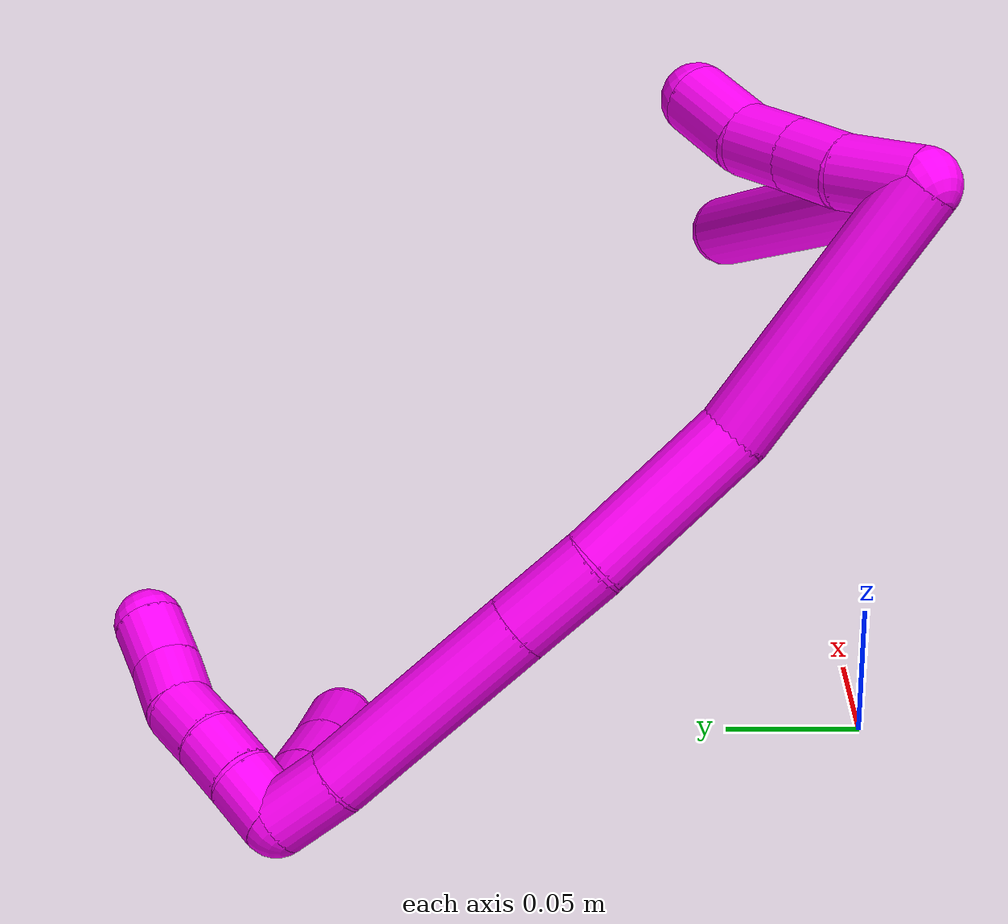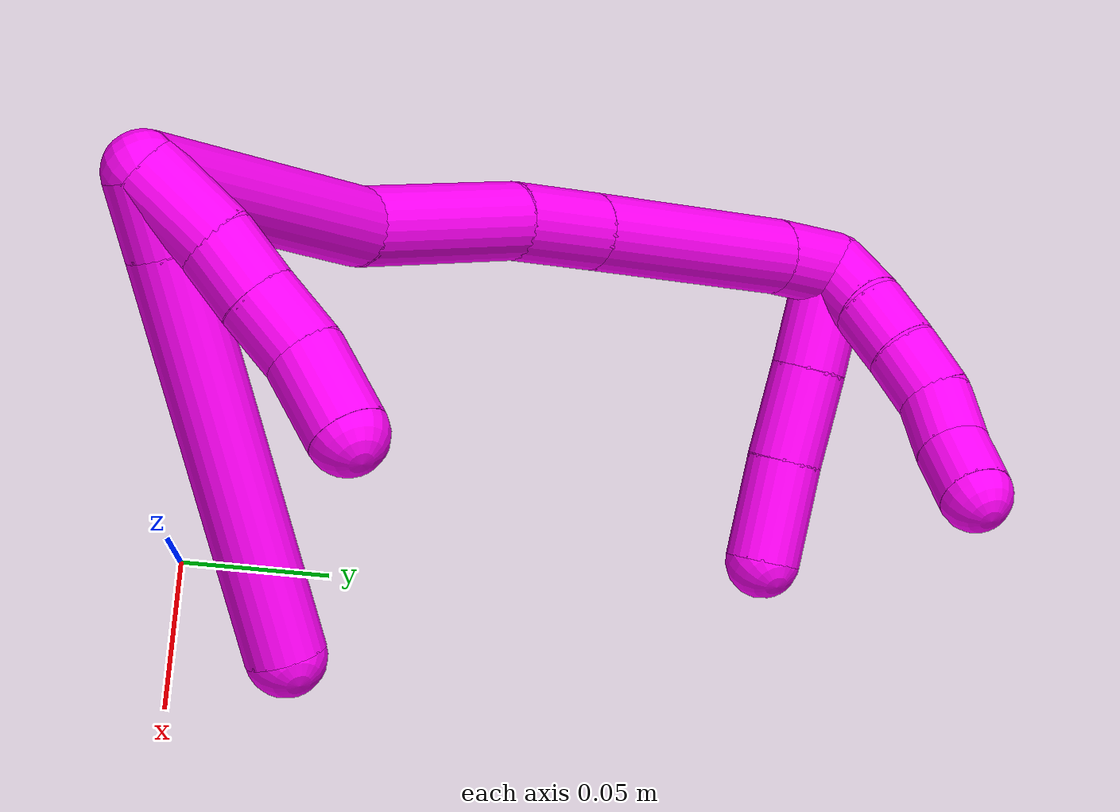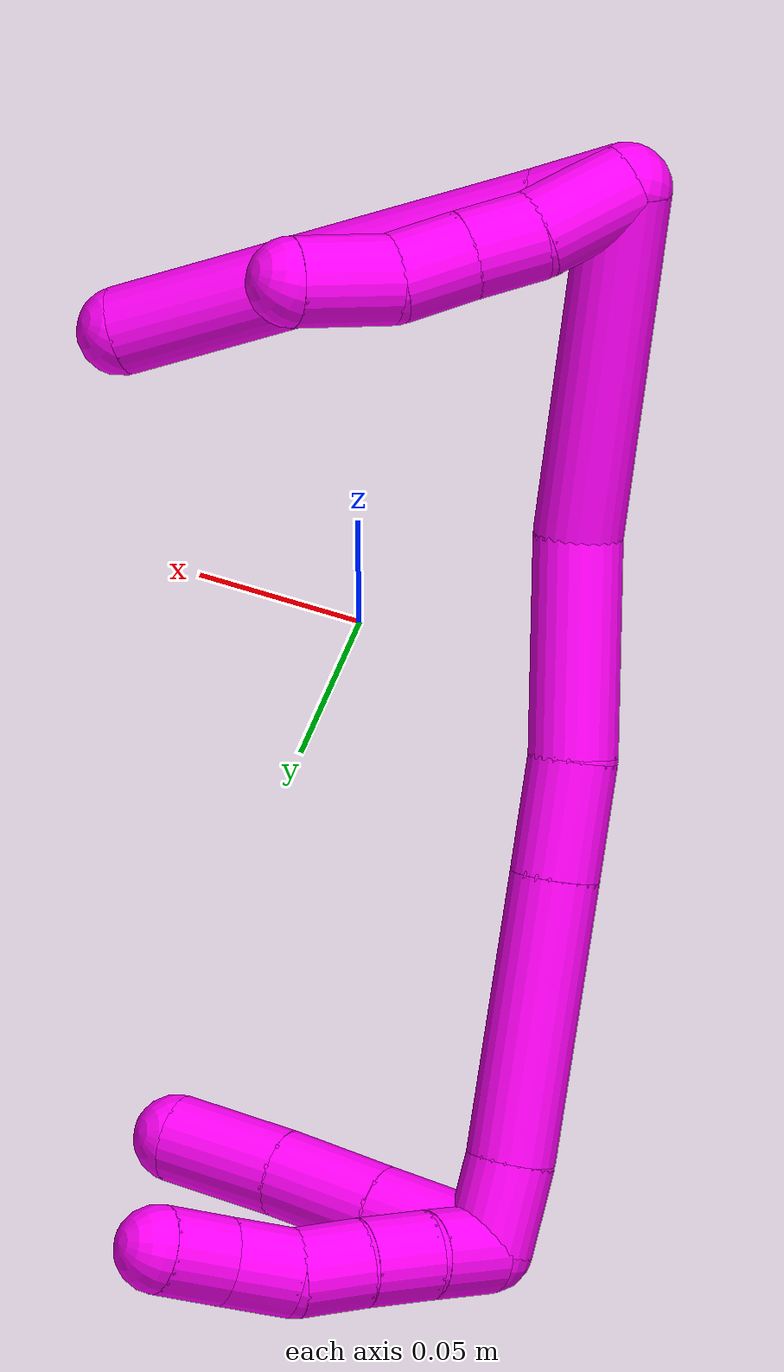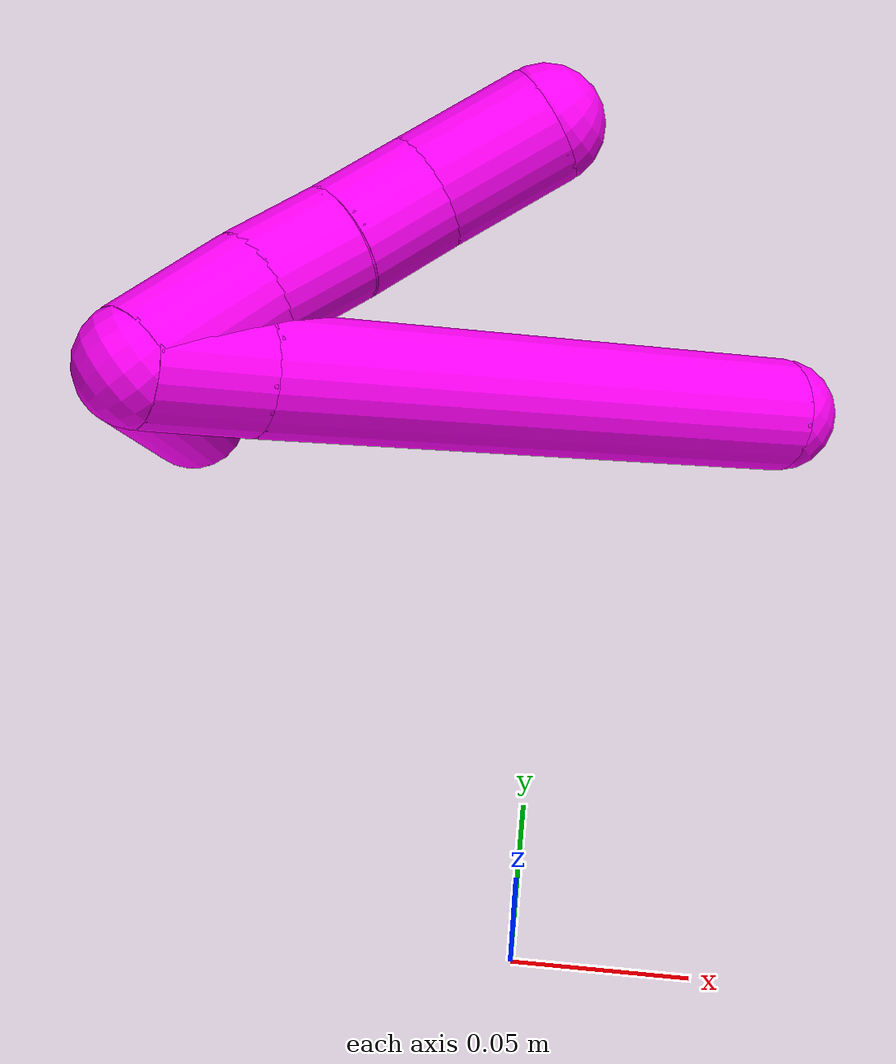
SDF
<sdf version="1.7">
 <world name="default">
  <model name="10">
   <static>0</static>
   <link name="10">
    <collision name="collision-cylinder-e_1_2_8">
     <pose>0.009239 0.003254 0.007094 -0.430088 0.869361 -0.202134</pose>
     <geometry><cylinder><radius>0.0125</radius><length>0.024189</length></cylinder></geometry>
     <surface>
      <friction><ode><mu>1.16</mu><mu2>1.16</mu2><slip1>0</slip1><slip2>0</slip2></ode></friction>
      <contact><ode><kp>1e+06</kp><kd>1</kd><max_vel>0</max_vel><min_depth>0.001</min_depth></ode></contact>
     </surface>
    </collision>
    <visual name="visual-cylinder-e_1_2_8">
     <pose>0.009239 0.003254 0.007094 -0.430088 0.869361 -0.202134</pose>
     <geometry><cylinder><radius>0.0125</radius><length>0.024189</length></cylinder></geometry>
     <material><ambient>1 0 0.964706 1</ambient></material>
    </visual>
    <collision name="collision-cylinder-e_2_8_6">
     <pose>0.065962 0.02285 0.052073 -0.407226 0.855421 -0.187691</pose>
     <geometry><cylinder><radius>0.0125</radius><length>0.125811</length></cylinder></geometry>
     <surface>
      <friction><ode><mu>1.16</mu><mu2>1.16</mu2><slip1>0</slip1><slip2>0</slip2></ode></friction>
      <contact><ode><kp>1e+06</kp><kd>1</kd><max_vel>0</max_vel><min_depth>0.001</min_depth></ode></contact>
     </surface>
    </collision>
    <visual name="visual-cylinder-e_2_8_6">
     <pose>0.065962 0.02285 0.052073 -0.407226 0.855421 -0.187691</pose>
     <geometry><cylinder><radius>0.0125</radius><length>0.125811</length></cylinder></geometry>
     <material><ambient>1 0 0.964706 1</ambient></material>
    </visual>
    <collision name="collision-cylinder-e_1_2_9">
     <pose>0.003941 0.00823 0.0115 -0.62113 0.271787 -0.087715</pose>
     <geometry><cylinder><radius>0.0125</radius><length>0.029361</length></cylinder></geometry>
     <surface>
      <friction><ode><mu>1.16</mu><mu2>1.16</mu2><slip1>0</slip1><slip2>0</slip2></ode></friction>
      <contact><ode><kp>1e+06</kp><kd>1</kd><max_vel>0</max_vel><min_depth>0.001</min_depth></ode></contact>
     </surface>
    </collision>
    <visual name="visual-cylinder-e_1_2_9">
     <pose>0.003941 0.00823 0.0115 -0.62113 0.271787 -0.087715</pose>
     <geometry><cylinder><radius>0.0125</radius><length>0.029361</length></cylinder></geometry>
     <material><ambient>1 0 0.964706 1</ambient></material>
    </visual>
    <collision name="collision-cylinder-e_2_9_10">
     <pose>0.010925 0.020532 0.031959 -0.426633 0.299858 -0.06542</pose>
     <geometry><cylinder><radius>0.0125</radius><length>0.0206</length></cylinder></geometry>
     <surface>
      <friction><ode><mu>1.16</mu><mu2>1.16</mu2><slip1>0</slip1><slip2>0</slip2></ode></friction>
      <contact><ode><kp>1e+06</kp><kd>1</kd><max_vel>0</max_vel><min_depth>0.001</min_depth></ode></contact>
     </surface>
    </collision>
    <visual name="visual-cylinder-e_2_9_10">
     <pose>0.010925 0.020532 0.031959 -0.426633 0.299858 -0.06542</pose>
     <geometry><cylinder><radius>0.0125</radius><length>0.0206</length></cylinder></geometry>
     <material><ambient>1 0 0.964706 1</ambient></material>
    </visual>
    <collision name="collision-cylinder-e_3_10_11">
     <pose>0.016873 0.029237 0.050219 -0.462108 0.272638 -0.064518</pose>
     <geometry><cylinder><radius>0.0125</radius><length>0.02158</length></cylinder></geometry>
     <surface>
      <friction><ode><mu>1.16</mu><mu2>1.16</mu2><slip1>0</slip1><slip2>0</slip2></ode></friction>
      <contact><ode><kp>1e+06</kp><kd>1</kd><max_vel>0</max_vel><min_depth>0.001</min_depth></ode></contact>
     </surface>
    </collision>
    <visual name="visual-cylinder-e_3_10_11">
     <pose>0.016873 0.029237 0.050219 -0.462108 0.272638 -0.064518</pose>
     <geometry><cylinder><radius>0.0125</radius><length>0.02158</length></cylinder></geometry>
     <material><ambient>1 0 0.964706 1</ambient></material>
    </visual>
    <collision name="collision-cylinder-e_4_11_5">
     <pose>0.022722 0.036349 0.07322 -0.179084 0.208372 -0.018775</pose>
     <geometry><cylinder><radius>0.0125</radius><length>0.028458</length></cylinder></geometry>
     <surface>
      <friction><ode><mu>1.16</mu><mu2>1.16</mu2><slip1>0</slip1><slip2>0</slip2></ode></friction>
      <contact><ode><kp>1e+06</kp><kd>1</kd><max_vel>0</max_vel><min_depth>0.001</min_depth></ode></contact>
     </surface>
    </collision>
    <visual name="visual-cylinder-e_4_11_5">
     <pose>0.022722 0.036349 0.07322 -0.179084 0.208372 -0.018775</pose>
     <geometry><cylinder><radius>0.0125</radius><length>0.028458</length></cylinder></geometry>
     <material><ambient>1 0 0.964706 1</ambient></material>
    </visual>
    <collision name="collision-cylinder-e_1_2_12">
     <pose>0.023014 0.04327 -0.010641 -1.81194 0.476752 -0.601208</pose>
     <geometry><cylinder><radius>0.0125</radius><length>0.100303</length></cylinder></geometry>
     <surface>
      <friction><ode><mu>1.16</mu><mu2>1.16</mu2><slip1>0</slip1><slip2>0</slip2></ode></friction>
      <contact><ode><kp>1e+06</kp><kd>1</kd><max_vel>0</max_vel><min_depth>0.001</min_depth></ode></contact>
     </surface>
    </collision>
    <visual name="visual-cylinder-e_1_2_12">
     <pose>0.023014 0.04327 -0.010641 -1.81194 0.476752 -0.601208</pose>
     <geometry><cylinder><radius>0.0125</radius><length>0.100303</length></cylinder></geometry>
     <material><ambient>1 0 0.964706 1</ambient></material>
    </visual>
    <collision name="collision-cylinder-e_2_12_13">
     <pose>0.051797 0.11613 -0.026787 -1.75469 0.189368 -0.227534</pose>
     <geometry><cylinder><radius>0.0125</radius><length>0.061291</length></cylinder></geometry>
     <surface>
      <friction><ode><mu>1.16</mu><mu2>1.16</mu2><slip1>0</slip1><slip2>0</slip2></ode></friction>
      <contact><ode><kp>1e+06</kp><kd>1</kd><max_vel>0</max_vel><min_depth>0.001</min_depth></ode></contact>
     </surface>
    </collision>
    <visual name="visual-cylinder-e_2_12_13">
     <pose>0.051797 0.11613 -0.026787 -1.75469 0.189368 -0.227534</pose>
     <geometry><cylinder><radius>0.0125</radius><length>0.061291</length></cylinder></geometry>
     <material><ambient>1 0 0.964706 1</ambient></material>
    </visual>
    <collision name="collision-cylinder-e_3_13_14">
     <pose>0.06208 0.161603 -0.033625 -1.65465 0.275976 -0.299799</pose>
     <geometry><cylinder><radius>0.0125</radius><length>0.033132</length></cylinder></geometry>
     <surface>
      <friction><ode><mu>1.16</mu><mu2>1.16</mu2><slip1>0</slip1><slip2>0</slip2></ode></friction>
      <contact><ode><kp>1e+06</kp><kd>1</kd><max_vel>0</max_vel><min_depth>0.001</min_depth></ode></contact>
     </surface>
    </collision>
    <visual name="visual-cylinder-e_3_13_14">
     <pose>0.06208 0.161603 -0.033625 -1.65465 0.275976 -0.299799</pose>
     <geometry><cylinder><radius>0.0125</radius><length>0.033132</length></cylinder></geometry>
     <material><ambient>1 0 0.964706 1</ambient></material>
    </visual>
    <collision name="collision-cylinder-e_4_14_15">
     <pose>0.077706 0.215669 -0.038174 -1.65477 0.282245 -0.306627</pose>
     <geometry><cylinder><radius>0.0125</radius><length>0.079794</length></cylinder></geometry>
     <surface>
      <friction><ode><mu>1.16</mu><mu2>1.16</mu2><slip1>0</slip1><slip2>0</slip2></ode></friction>
      <contact><ode><kp>1e+06</kp><kd>1</kd><max_vel>0</max_vel><min_depth>0.001</min_depth></ode></contact>
     </surface>
    </collision>
    <visual name="visual-cylinder-e_4_14_15">
     <pose>0.077706 0.215669 -0.038174 -1.65477 0.282245 -0.306627</pose>
     <geometry><cylinder><radius>0.0125</radius><length>0.079794</length></cylinder></geometry>
     <material><ambient>1 0 0.964706 1</ambient></material>
    </visual>
    <collision name="collision-cylinder-e_5_15_1">
     <pose>0.092388 0.266078 -0.041057 -1.54373 0.284029 -0.276542</pose>
     <geometry><cylinder><radius>0.0125</radius><length>0.02548</length></cylinder></geometry>
     <surface>
      <friction><ode><mu>1.16</mu><mu2>1.16</mu2><slip1>0</slip1><slip2>0</slip2></ode></friction>
      <contact><ode><kp>1e+06</kp><kd>1</kd><max_vel>0</max_vel><min_depth>0.001</min_depth></ode></contact>
     </surface>
    </collision>
    <visual name="visual-cylinder-e_5_15_1">
     <pose>0.092388 0.266078 -0.041057 -1.54373 0.284029 -0.276542</pose>
     <geometry><cylinder><radius>0.0125</radius><length>0.02548</length></cylinder></geometry>
     <material><ambient>1 0 0.964706 1</ambient></material>
    </visual>
    <collision name="collision-cylinder-e_1_1_16">
     <pose>0.108875 0.273359 -0.03056 0.45264 0.851885 0.208196</pose>
     <geometry><cylinder><radius>0.0125</radius><length>0.034331</length></cylinder></geometry>
     <surface>
      <friction><ode><mu>1.16</mu><mu2>1.16</mu2><slip1>0</slip1><slip2>0</slip2></ode></friction>
      <contact><ode><kp>1e+06</kp><kd>1</kd><max_vel>0</max_vel><min_depth>0.001</min_depth></ode></contact>
     </surface>
    </collision>
    <visual name="visual-cylinder-e_1_1_16">
     <pose>0.108875 0.273359 -0.03056 0.45264 0.851885 0.208196</pose>
     <geometry><cylinder><radius>0.0125</radius><length>0.034331</length></cylinder></geometry>
     <material><ambient>1 0 0.964706 1</ambient></material>
    </visual>
    <collision name="collision-cylinder-e_2_16_17">
     <pose>0.133838 0.263694 -0.011366 0.481861 0.868753 0.226998</pose>
     <geometry><cylinder><radius>0.0125</radius><length>0.03155</length></cylinder></geometry>
     <surface>
      <friction><ode><mu>1.16</mu><mu2>1.16</mu2><slip1>0</slip1><slip2>0</slip2></ode></friction>
      <contact><ode><kp>1e+06</kp><kd>1</kd><max_vel>0</max_vel><min_depth>0.001</min_depth></ode></contact>
     </surface>
    </collision>
    <visual name="visual-cylinder-e_2_16_17">
     <pose>0.133838 0.263694 -0.011366 0.481861 0.868753 0.226998</pose>
     <geometry><cylinder><radius>0.0125</radius><length>0.03155</length></cylinder></geometry>
     <material><ambient>1 0 0.964706 1</ambient></material>
    </visual>
    <collision name="collision-cylinder-e_3_17_4">
     <pose>0.15883 0.254467 0.007814 0.417697 0.861714 0.194226</pose>
     <geometry><cylinder><radius>0.0125</radius><length>0.034118</length></cylinder></geometry>
     <surface>
      <friction><ode><mu>1.16</mu><mu2>1.16</mu2><slip1>0</slip1><slip2>0</slip2></ode></friction>
      <contact><ode><kp>1e+06</kp><kd>1</kd><max_vel>0</max_vel><min_depth>0.001</min_depth></ode></contact>
     </surface>
    </collision>
    <visual name="visual-cylinder-e_3_17_4">
     <pose>0.15883 0.254467 0.007814 0.417697 0.861714 0.194226</pose>
     <geometry><cylinder><radius>0.0125</radius><length>0.034118</length></cylinder></geometry>
     <material><ambient>1 0 0.964706 1</ambient></material>
    </visual>
    <collision name="collision-cylinder-e_1_1_18">
     <pose>0.095687 0.280536 -0.030982 -0.225268 -0.02707 0.003062</pose>
     <geometry><cylinder><radius>0.0125</radius><length>0.02</length></cylinder></geometry>
     <surface>
      <friction><ode><mu>1.16</mu><mu2>1.16</mu2><slip1>0</slip1><slip2>0</slip2></ode></friction>
      <contact><ode><kp>1e+06</kp><kd>1</kd><max_vel>0</max_vel><min_depth>0.001</min_depth></ode></contact>
     </surface>
    </collision>
    <visual name="visual-cylinder-e_1_1_18">
     <pose>0.095687 0.280536 -0.030982 -0.225268 -0.02707 0.003062</pose>
     <geometry><cylinder><radius>0.0125</radius><length>0.02</length></cylinder></geometry>
     <material><ambient>1 0 0.964706 1</ambient></material>
    </visual>
    <collision name="collision-cylinder-e_2_18_19">
     <pose>0.096642 0.285087 -0.011588 -0.235774 0.122841 -0.014567</pose>
     <geometry><cylinder><radius>0.0125</radius><length>0.02</length></cylinder></geometry>
     <surface>
      <friction><ode><mu>1.16</mu><mu2>1.16</mu2><slip1>0</slip1><slip2>0</slip2></ode></friction>
      <contact><ode><kp>1e+06</kp><kd>1</kd><max_vel>0</max_vel><min_depth>0.001</min_depth></ode></contact>
     </surface>
    </collision>
    <visual name="visual-cylinder-e_2_18_19">
     <pose>0.096642 0.285087 -0.011588 -0.235774 0.122841 -0.014567</pose>
     <geometry><cylinder><radius>0.0125</radius><length>0.02</length></cylinder></geometry>
     <material><ambient>1 0 0.964706 1</ambient></material>
    </visual>
    <collision name="collision-cylinder-e_3_19_20">
     <pose>0.100018 0.289978 0.007483 -0.266588 0.216796 -0.029182</pose>
     <geometry><cylinder><radius>0.0125</radius><length>0.02</length></cylinder></geometry>
     <surface>
      <friction><ode><mu>1.16</mu><mu2>1.16</mu2><slip1>0</slip1><slip2>0</slip2></ode></friction>
      <contact><ode><kp>1e+06</kp><kd>1</kd><max_vel>0</max_vel><min_depth>0.001</min_depth></ode></contact>
     </surface>
    </collision>
    <visual name="visual-cylinder-e_3_19_20">
     <pose>0.100018 0.289978 0.007483 -0.266588 0.216796 -0.029182</pose>
     <geometry><cylinder><radius>0.0125</radius><length>0.02</length></cylinder></geometry>
     <material><ambient>1 0 0.964706 1</ambient></material>
    </visual>
    <collision name="collision-cylinder-e_4_20_21">
     <pose>0.104396 0.292048 0.02664 0.051659 0.224538 0.005825</pose>
     <geometry><cylinder><radius>0.0125</radius><length>0.02</length></cylinder></geometry>
     <surface>
      <friction><ode><mu>1.16</mu><mu2>1.16</mu2><slip1>0</slip1><slip2>0</slip2></ode></friction>
      <contact><ode><kp>1e+06</kp><kd>1</kd><max_vel>0</max_vel><min_depth>0.001</min_depth></ode></contact>
     </surface>
    </collision>
    <visual name="visual-cylinder-e_4_20_21">
     <pose>0.104396 0.292048 0.02664 0.051659 0.224538 0.005825</pose>
     <geometry><cylinder><radius>0.0125</radius><length>0.02</length></cylinder></geometry>
     <material><ambient>1 0 0.964706 1</ambient></material>
    </visual>
    <collision name="collision-cylinder-e_5_21_3">
     <pose>0.107257 0.291209 0.04635 0.033576 0.063532 0.001067</pose>
     <geometry><cylinder><radius>0.0125</radius><length>0.02</length></cylinder></geometry>
     <surface>
      <friction><ode><mu>1.16</mu><mu2>1.16</mu2><slip1>0</slip1><slip2>0</slip2></ode></friction>
      <contact><ode><kp>1e+06</kp><kd>1</kd><max_vel>0</max_vel><min_depth>0.001</min_depth></ode></contact>
     </surface>
    </collision>
    <visual name="visual-cylinder-e_5_21_3">
     <pose>0.107257 0.291209 0.04635 0.033576 0.063532 0.001067</pose>
     <geometry><cylinder><radius>0.0125</radius><length>0.02</length></cylinder></geometry>
     <material><ambient>1 0 0.964706 1</ambient></material>
    </visual>
    <collision name="collision-sphere-3">
     <pose>0.107892 0.290874 0.056324 0 -0 0</pose>
     <geometry><sphere><radius>0.0125</radius></sphere></geometry>
     <surface>
      <friction><ode><mu>1.16</mu><mu2>1.16</mu2><slip1>0</slip1><slip2>0</slip2></ode></friction>
      <contact><ode><kp>1e+06</kp><kd>1</kd><max_vel>0</max_vel><min_depth>0.001</min_depth></ode></contact>
     </surface>
    </collision>
    <visual name="visual-sphere-3">
     <pose>0.107892 0.290874 0.056324 0 -0 0</pose>
     <geometry><sphere><radius>0.0125</radius></sphere></geometry>
     <material><ambient>1 0 0.964706 1</ambient></material>
    </visual>
    <collision name="collision-sphere-21">
     <pose>0.106622 0.291544 0.036376 0 -0 0</pose>
     <geometry><sphere><radius>0.0125</radius></sphere></geometry>
     <surface>
      <friction><ode><mu>1.16</mu><mu2>1.16</mu2><slip1>0</slip1><slip2>0</slip2></ode></friction>
      <contact><ode><kp>1e+06</kp><kd>1</kd><max_vel>0</max_vel><min_depth>0.001</min_depth></ode></contact>
     </surface>
    </collision>
    <visual name="visual-sphere-21">
     <pose>0.106622 0.291544 0.036376 0 -0 0</pose>
     <geometry><sphere><radius>0.0125</radius></sphere></geometry>
     <material><ambient>1 0 0.964706 1</ambient></material>
    </visual>
    <collision name="collision-sphere-20">
     <pose>0.102169 0.292551 0.016904 0 -0 0</pose>
     <geometry><sphere><radius>0.0125</radius></sphere></geometry>
     <surface>
      <friction><ode><mu>1.16</mu><mu2>1.16</mu2><slip1>0</slip1><slip2>0</slip2></ode></friction>
      <contact><ode><kp>1e+06</kp><kd>1</kd><max_vel>0</max_vel><min_depth>0.001</min_depth></ode></contact>
     </surface>
    </collision>
    <visual name="visual-sphere-20">
     <pose>0.102169 0.292551 0.016904 0 -0 0</pose>
     <geometry><sphere><radius>0.0125</radius></sphere></geometry>
     <material><ambient>1 0 0.964706 1</ambient></material>
    </visual>
    <collision name="collision-sphere-19">
     <pose>0.097867 0.287405 -0.001938 0 -0 0</pose>
     <geometry><sphere><radius>0.0125</radius></sphere></geometry>
     <surface>
      <friction><ode><mu>1.16</mu><mu2>1.16</mu2><slip1>0</slip1><slip2>0</slip2></ode></friction>
      <contact><ode><kp>1e+06</kp><kd>1</kd><max_vel>0</max_vel><min_depth>0.001</min_depth></ode></contact>
     </surface>
    </collision>
    <visual name="visual-sphere-19">
     <pose>0.097867 0.287405 -0.001938 0 -0 0</pose>
     <geometry><sphere><radius>0.0125</radius></sphere></geometry>
     <material><ambient>1 0 0.964706 1</ambient></material>
    </visual>
    <collision name="collision-sphere-11">
     <pose>0.019778 0.03387 0.059521 0 -0 0</pose>
     <geometry><sphere><radius>0.0125</radius></sphere></geometry>
     <surface>
      <friction><ode><mu>1.16</mu><mu2>1.16</mu2><slip1>0</slip1><slip2>0</slip2></ode></friction>
      <contact><ode><kp>1e+06</kp><kd>1</kd><max_vel>0</max_vel><min_depth>0.001</min_depth></ode></contact>
     </surface>
    </collision>
    <visual name="visual-sphere-11">
     <pose>0.019778 0.03387 0.059521 0 -0 0</pose>
     <geometry><sphere><radius>0.0125</radius></sphere></geometry>
     <material><ambient>1 0 0.964706 1</ambient></material>
    </visual>
    <collision name="collision-sphere-10">
     <pose>0.013967 0.024604 0.040918 0 -0 0</pose>
     <geometry><sphere><radius>0.0125</radius></sphere></geometry>
     <surface>
      <friction><ode><mu>1.16</mu><mu2>1.16</mu2><slip1>0</slip1><slip2>0</slip2></ode></friction>
      <contact><ode><kp>1e+06</kp><kd>1</kd><max_vel>0</max_vel><min_depth>0.001</min_depth></ode></contact>
     </surface>
    </collision>
    <visual name="visual-sphere-10">
     <pose>0.013967 0.024604 0.040918 0 -0 0</pose>
     <geometry><sphere><radius>0.0125</radius></sphere></geometry>
     <material><ambient>1 0 0.964706 1</ambient></material>
    </visual>
    <collision name="collision-sphere-6">
     <pose>0.113446 0.039191 0.089959 0 -0 0</pose>
     <geometry><sphere><radius>0.0125</radius></sphere></geometry>
     <surface>
      <friction><ode><mu>1.16</mu><mu2>1.16</mu2><slip1>0</slip1><slip2>0</slip2></ode></friction>
      <contact><ode><kp>1e+06</kp><kd>1</kd><max_vel>0</max_vel><min_depth>0.001</min_depth></ode></contact>
     </surface>
    </collision>
    <visual name="visual-sphere-6">
     <pose>0.113446 0.039191 0.089959 0 -0 0</pose>
     <geometry><sphere><radius>0.0125</radius></sphere></geometry>
     <material><ambient>1 0 0.964706 1</ambient></material>
    </visual>
    <collision name="collision-sphere-9">
     <pose>0.007882 0.01646 0.023001 0 -0 0</pose>
     <geometry><sphere><radius>0.0125</radius></sphere></geometry>
     <surface>
      <friction><ode><mu>1.16</mu><mu2>1.16</mu2><slip1>0</slip1><slip2>0</slip2></ode></friction>
      <contact><ode><kp>1e+06</kp><kd>1</kd><max_vel>0</max_vel><min_depth>0.001</min_depth></ode></contact>
     </surface>
    </collision>
    <visual name="visual-sphere-9">
     <pose>0.007882 0.01646 0.023001 0 -0 0</pose>
     <geometry><sphere><radius>0.0125</radius></sphere></geometry>
     <material><ambient>1 0 0.964706 1</ambient></material>
    </visual>
    <collision name="collision-sphere-2">
     <geometry><sphere><radius>0.0125</radius></sphere></geometry>
     <surface>
      <friction><ode><mu>1.16</mu><mu2>1.16</mu2><slip1>0</slip1><slip2>0</slip2></ode></friction>
      <contact><ode><kp>1e+06</kp><kd>1</kd><max_vel>0</max_vel><min_depth>0.001</min_depth></ode></contact>
     </surface>
    </collision>
    <visual name="visual-sphere-2">
     <geometry><sphere><radius>0.0125</radius></sphere></geometry>
     <material><ambient>1 0 0.964706 1</ambient></material>
    </visual>
    <collision name="collision-sphere-8">
     <pose>0.018478 0.006508 0.014188 0 -0 0</pose>
     <geometry><sphere><radius>0.0125</radius></sphere></geometry>
     <surface>
      <friction><ode><mu>1.16</mu><mu2>1.16</mu2><slip1>0</slip1><slip2>0</slip2></ode></friction>
      <contact><ode><kp>1e+06</kp><kd>1</kd><max_vel>0</max_vel><min_depth>0.001</min_depth></ode></contact>
     </surface>
    </collision>
    <visual name="visual-sphere-8">
     <pose>0.018478 0.006508 0.014188 0 -0 0</pose>
     <geometry><sphere><radius>0.0125</radius></sphere></geometry>
     <material><ambient>1 0 0.964706 1</ambient></material>
    </visual>
    <collision name="collision-sphere-5">
     <pose>0.025665 0.038829 0.086918 0 -0 0</pose>
     <geometry><sphere><radius>0.0125</radius></sphere></geometry>
     <surface>
      <friction><ode><mu>1.16</mu><mu2>1.16</mu2><slip1>0</slip1><slip2>0</slip2></ode></friction>
      <contact><ode><kp>1e+06</kp><kd>1</kd><max_vel>0</max_vel><min_depth>0.001</min_depth></ode></contact>
     </surface>
    </collision>
    <visual name="visual-sphere-5">
     <pose>0.025665 0.038829 0.086918 0 -0 0</pose>
     <geometry><sphere><radius>0.0125</radius></sphere></geometry>
     <material><ambient>1 0 0.964706 1</ambient></material>
    </visual>
    <collision name="collision-sphere-12">
     <pose>0.046029 0.08654 -0.021283 0 -0 0</pose>
     <geometry><sphere><radius>0.0125</radius></sphere></geometry>
     <surface>
      <friction><ode><mu>1.16</mu><mu2>1.16</mu2><slip1>0</slip1><slip2>0</slip2></ode></friction>
      <contact><ode><kp>1e+06</kp><kd>1</kd><max_vel>0</max_vel><min_depth>0.001</min_depth></ode></contact>
     </surface>
    </collision>
    <visual name="visual-sphere-12">
     <pose>0.046029 0.08654 -0.021283 0 -0 0</pose>
     <geometry><sphere><radius>0.0125</radius></sphere></geometry>
     <material><ambient>1 0 0.964706 1</ambient></material>
    </visual>
    <collision name="collision-sphere-13">
     <pose>0.057566 0.14572 -0.03229 0 -0 0</pose>
     <geometry><sphere><radius>0.0125</radius></sphere></geometry>
     <surface>
      <friction><ode><mu>1.16</mu><mu2>1.16</mu2><slip1>0</slip1><slip2>0</slip2></ode></friction>
      <contact><ode><kp>1e+06</kp><kd>1</kd><max_vel>0</max_vel><min_depth>0.001</min_depth></ode></contact>
     </surface>
    </collision>
    <visual name="visual-sphere-13">
     <pose>0.057566 0.14572 -0.03229 0 -0 0</pose>
     <geometry><sphere><radius>0.0125</radius></sphere></geometry>
     <material><ambient>1 0 0.964706 1</ambient></material>
    </visual>
    <collision name="collision-sphere-14">
     <pose>0.066594 0.177486 -0.03496 0 -0 0</pose>
     <geometry><sphere><radius>0.0125</radius></sphere></geometry>
     <surface>
      <friction><ode><mu>1.16</mu><mu2>1.16</mu2><slip1>0</slip1><slip2>0</slip2></ode></friction>
      <contact><ode><kp>1e+06</kp><kd>1</kd><max_vel>0</max_vel><min_depth>0.001</min_depth></ode></contact>
     </surface>
    </collision>
    <visual name="visual-sphere-14">
     <pose>0.066594 0.177486 -0.03496 0 -0 0</pose>
     <geometry><sphere><radius>0.0125</radius></sphere></geometry>
     <material><ambient>1 0 0.964706 1</ambient></material>
    </visual>
    <collision name="collision-sphere-15">
     <pose>0.088818 0.253853 -0.041388 0 -0 0</pose>
     <geometry><sphere><radius>0.0125</radius></sphere></geometry>
     <surface>
      <friction><ode><mu>1.16</mu><mu2>1.16</mu2><slip1>0</slip1><slip2>0</slip2></ode></friction>
      <contact><ode><kp>1e+06</kp><kd>1</kd><max_vel>0</max_vel><min_depth>0.001</min_depth></ode></contact>
     </surface>
    </collision>
    <visual name="visual-sphere-15">
     <pose>0.088818 0.253853 -0.041388 0 -0 0</pose>
     <geometry><sphere><radius>0.0125</radius></sphere></geometry>
     <material><ambient>1 0 0.964706 1</ambient></material>
    </visual>
    <collision name="collision-sphere-1">
     <pose>0.095958 0.278303 -0.040726 0 -0 0</pose>
     <geometry><sphere><radius>0.0125</radius></sphere></geometry>
     <surface>
      <friction><ode><mu>1.16</mu><mu2>1.16</mu2><slip1>0</slip1><slip2>0</slip2></ode></friction>
      <contact><ode><kp>1e+06</kp><kd>1</kd><max_vel>0</max_vel><min_depth>0.001</min_depth></ode></contact>
     </surface>
    </collision>
    <visual name="visual-sphere-1">
     <pose>0.095958 0.278303 -0.040726 0 -0 0</pose>
     <geometry><sphere><radius>0.0125</radius></sphere></geometry>
     <material><ambient>1 0 0.964706 1</ambient></material>
    </visual>
    <collision name="collision-sphere-18">
     <pose>0.095416 0.282769 -0.021238 0 -0 0</pose>
     <geometry><sphere><radius>0.0125</radius></sphere></geometry>
     <surface>
      <friction><ode><mu>1.16</mu><mu2>1.16</mu2><slip1>0</slip1><slip2>0</slip2></ode></friction>
      <contact><ode><kp>1e+06</kp><kd>1</kd><max_vel>0</max_vel><min_depth>0.001</min_depth></ode></contact>
     </surface>
    </collision>
    <visual name="visual-sphere-18">
     <pose>0.095416 0.282769 -0.021238 0 -0 0</pose>
     <geometry><sphere><radius>0.0125</radius></sphere></geometry>
     <material><ambient>1 0 0.964706 1</ambient></material>
    </visual>
    <collision name="collision-sphere-16">
     <pose>0.121793 0.268415 -0.020393 0 -0 0</pose>
     <geometry><sphere><radius>0.0125</radius></sphere></geometry>
     <surface>
      <friction><ode><mu>1.16</mu><mu2>1.16</mu2><slip1>0</slip1><slip2>0</slip2></ode></friction>
      <contact><ode><kp>1e+06</kp><kd>1</kd><max_vel>0</max_vel><min_depth>0.001</min_depth></ode></contact>
     </surface>
    </collision>
    <visual name="visual-sphere-16">
     <pose>0.121793 0.268415 -0.020393 0 -0 0</pose>
     <geometry><sphere><radius>0.0125</radius></sphere></geometry>
     <material><ambient>1 0 0.964706 1</ambient></material>
    </visual>
    <collision name="collision-sphere-17">
     <pose>0.145882 0.258973 -0.002339 0 -0 0</pose>
     <geometry><sphere><radius>0.0125</radius></sphere></geometry>
     <surface>
      <friction><ode><mu>1.16</mu><mu2>1.16</mu2><slip1>0</slip1><slip2>0</slip2></ode></friction>
      <contact><ode><kp>1e+06</kp><kd>1</kd><max_vel>0</max_vel><min_depth>0.001</min_depth></ode></contact>
     </surface>
    </collision>
    <visual name="visual-sphere-17">
     <pose>0.145882 0.258973 -0.002339 0 -0 0</pose>
     <geometry><sphere><radius>0.0125</radius></sphere></geometry>
     <material><ambient>1 0 0.964706 1</ambient></material>
    </visual>
    <collision name="collision-sphere-4">
     <pose>0.171777 0.249961 0.017967 0 -0 0</pose>
     <geometry><sphere><radius>0.0125</radius></sphere></geometry>
     <surface>
      <friction><ode><mu>1.16</mu><mu2>1.16</mu2><slip1>0</slip1><slip2>0</slip2></ode></friction>
      <contact><ode><kp>1e+06</kp><kd>1</kd><max_vel>0</max_vel><min_depth>0.001</min_depth></ode></contact>
     </surface>
    </collision>
    <visual name="visual-sphere-4">
     <pose>0.171777 0.249961 0.017967 0 -0 0</pose>
     <geometry><sphere><radius>0.0125</radius></sphere></geometry>
     <material><ambient>1 0 0.964706 1</ambient></material>
    </visual>
    <inertial>
     <pose>0.065904 0.134997 0.003451 0 -0 0</pose>
     <mass>0.75</mass>
     <inertia>
      <ixx>0.00021</ixx>
      <ixy>0</ixy>
      <ixz>0</ixz>
      <iyy>0.000139</iyy>
      <iyz>0</iyz>
      <izz>-0.000373</izz>
     </inertia>
    </inertial>
   </link>
   <pose>-0.078167 0.00115 0.239052 -0.701054 0.863621 -0.310407</pose>
  </model>
 </world>
</sdf>
